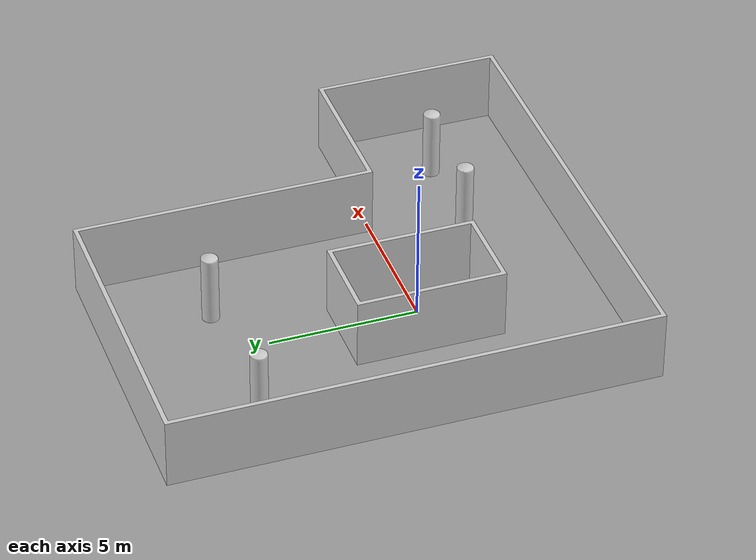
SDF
<sdf version='1.6'>
  <model name="room">
    <static>true</static>

    <link name="room_link">
      <pose>0 0 0 0 0 0</pose>

      <visual name="room_visual">
        <geometry>
          <mesh>
            <uri>model://models/room_1/meshes/test_room_1.stl</uri>
            <scale>1 1 1</scale>
          </mesh>
        </geometry>
        <material>
            <ambient>0.8 0.8 0.8 1</ambient>
            <diffuse>0.8 0.8 0.8 1</diffuse>
            <specular>0.8 0.8 0.8 1</specular>
            <specular>0.8 0.8 0.8 1</specular>
        </material>
      </visual>

      <collision name="room_colission">
        <geometry>
          <mesh>
            <uri>model://models/room_1/meshes/test_room_1.stl</uri>
            <scale>1 1 1</scale>
          </mesh>
        </geometry>
      </collision>

    </link>
  </model>
</sdf>
